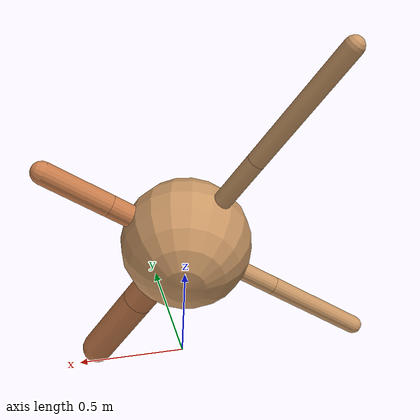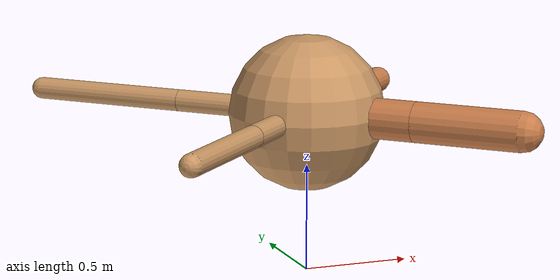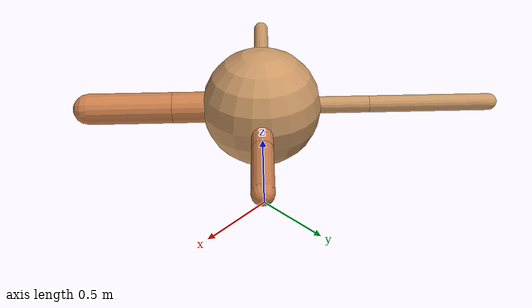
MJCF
<?xml version="1.0" ?>
<mujoco model="ant">

	<compiler angle="degree" coordinate="local" inertiafromgeom="true"/>

	<option integrator="RK4" timestep="0.01"/>

	<custom>

		<numeric data="0.0 0.0 0.55 1.0 0.0 0.0 0.0 0.0 1.0 0.0 -1.0 0.0 -1.0 0.0 1.0" name="init_qpos"/>

	</custom>

	<default>

		<joint armature="1" damping="1" limited="true"/>

		<geom conaffinity="0" condim="3" density="5.0" friction="1.5 0.1 0.1" margin="0.01" rgba="0.8 0.6 0.4 1"/>

	</default>

	<worldbody>

		<body name="torso" pos="0 0 0.75">

			<geom name="torso_geom" pos="0 0 0" size="0.361785289362785" type="sphere"/>

			<!--joint armature="0" damping="0" limited="false" margin="0.01" name="root" pos="0 0 0" type="free"/-->

			<body name="front_left_leg" pos="0 0 0">

				<geom fromto="0 0 0 0.2 0.2 0" name="aux_1_geom" size="0.062455299891101844" type="capsule" rgba=".8 .5 .3 1"/>

				<body name="aux_1" pos="0.2 0.2 0">

					<joint axis="0 0 1" name="hip_1" pos="0.0 0.0 0.0" range="-40 40" type="hinge"/>

					<geom fromto="0 0 0 0.1370099510464738 0.1370099510464738 0" name="left_leg_geom" size="0.062455299891101844" type="capsule" rgba=".8 .5 .3 1"/>

					<body pos="0.1370099510464738 0.1370099510464738 0" name="front_left_foot">

						<joint axis="-1 1 0" name="ankle_1" pos="0.0 0.0 0.0" range="30 100" type="hinge"/>

						<geom fromto="0 0 0 0.2740199020929476 0.2740199020929476 0" name="left_ankle_geom" size="0.062455299891101844" type="capsule" rgba=".8 .5 .3 1"/>

					</body>

				</body>

			</body>

			<body name="front_right_leg" pos="0 0 0">

				<geom fromto="0 0 0 -0.2 0.2 0" name="aux_2_geom" size="0.05141238493157205" type="capsule"/>

				<body name="aux_2" pos="-0.2 0.2 0">

					<joint axis="0 0 1" name="hip_2" pos="0.0 0.0 0.0" range="-40 40" type="hinge"/>

					<geom fromto="0 0 0 -0.2629852912346237 0.2629852912346237 0" name="right_leg_geom" size="0.05141238493157205" type="capsule"/>

					<body pos="-0.2629852912346237 0.2629852912346237 0" name="front_right_foot">

						<joint axis="1 1 0" name="ankle_2" pos="0.0 0.0 0.0" range="-100 -30" type="hinge"/>

						<geom fromto="0 0 0 -0.5259705824692474 0.5259705824692474 0" name="right_ankle_geom" size="0.05141238493157205" type="capsule"/>

					</body>

				</body>

			</body>

			<body name="left_back_leg" pos="0 0 0">

				<geom fromto="0 0 0 -0.2 -0.2 0" name="aux_3_geom" size="0.05256178995735195" type="capsule"/>

				<body name="aux_3" pos="-0.2 -0.2 0">

					<joint axis="0 0 1" name="hip_3" pos="0.0 0.0 0.0" range="-40 40" type="hinge"/>

					<geom fromto="0 0 0 -0.21518905664022805 -0.21518905664022805 0" name="back_leg_geom" size="0.05256178995735195" type="capsule"/>

					<body pos="-0.21518905664022805 -0.21518905664022805 0" name="left_back_foot">

						<joint axis="-1 1 0" name="ankle_3" pos="0.0 0.0 0.0" range="-100 -30" type="hinge"/>

						<geom fromto="0 0 0 -0.4303781132804561 -0.4303781132804561 0" name="third_ankle_geom" size="0.05256178995735195" type="capsule"/>

					</body>

				</body>

			</body>

			<body name="right_back_leg" pos="0 0 0">

				<geom fromto="0 0 0 0.2 -0.2 0" name="aux_4_geom" size="0.09417641847280799" type="capsule" rgba=".8 .5 .3 1"/>

				<body name="aux_4" pos="0.2 -0.2 0">

					<joint axis="0 0 1" name="hip_4" pos="0.0 0.0 0.0" range="-40 40" type="hinge"/>

					<geom fromto="0 0 0 0.17970194271312484 -0.17970194271312484 0" name="rightback_leg_geom" size="0.09417641847280799" type="capsule" rgba=".8 .5 .3 1"/>

					<body pos="0.17970194271312484 -0.17970194271312484 0" name="right_back_foot">

						<joint axis="1 1 0" name="ankle_4" pos="0.0 0.0 0.0" range="30 100" type="hinge"/>

						<geom fromto="0 0 0 0.3594038854262497 -0.3594038854262497 0" name="fourth_ankle_geom" size="0.09417641847280799" type="capsule" rgba=".8 .5 .3 1"/>

					</body>

				</body>

			</body>

		</body>

	</worldbody>

	<actuator>

		<motor ctrllimited="true" ctrlrange="-1.0 1.0" joint="hip_4" gear="150"/>

		<motor ctrllimited="true" ctrlrange="-1.0 1.0" joint="ankle_4" gear="150"/>

		<motor ctrllimited="true" ctrlrange="-1.0 1.0" joint="hip_1" gear="150"/>

		<motor ctrllimited="true" ctrlrange="-1.0 1.0" joint="ankle_1" gear="150"/>

		<motor ctrllimited="true" ctrlrange="-1.0 1.0" joint="hip_2" gear="150"/>

		<motor ctrllimited="true" ctrlrange="-1.0 1.0" joint="ankle_2" gear="150"/>

		<motor ctrllimited="true" ctrlrange="-1.0 1.0" joint="hip_3" gear="150"/>

		<motor ctrllimited="true" ctrlrange="-1.0 1.0" joint="ankle_3" gear="150"/>

	</actuator>

</mujoco>
